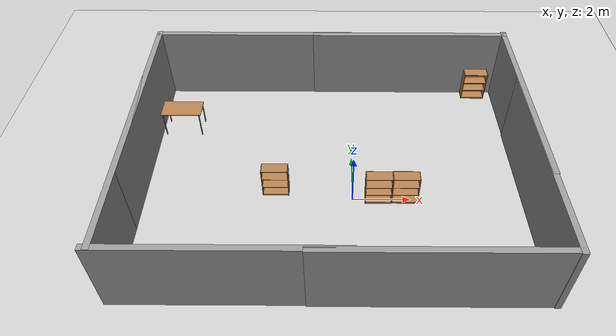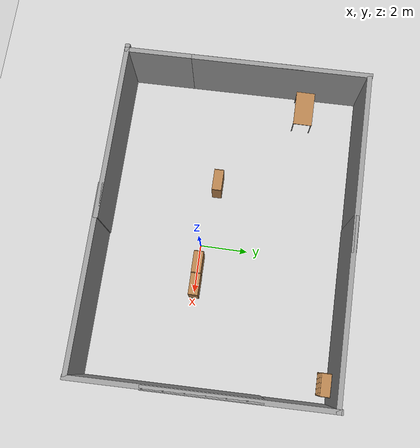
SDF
<sdf version="1.6">
 <world name="default">
  <light name="sun" type="directional">
   <pose>0 0 10 0 -0 0</pose>
   <diffuse>0.8 0.8 0.8 1</diffuse>
   <specular>0.2 0.2 0.2 1</specular>
   <attenuation>
    <range>1000</range>
    <constant>0.9</constant>
    <linear>0.01</linear>
    <quadratic>0.001</quadratic>
   </attenuation>
   <direction>-0.5 0.1 -0.9</direction>
  </light>
  <model name="ground_plane">
   <static>1</static>
   <link name="link">
    <collision name="collision">
     <geometry><plane><normal>0 0 1</normal><size>100 100</size></plane></geometry>
     <surface><friction><ode><mu>100</mu><mu2>50</mu2></ode></friction></surface>
    </collision>
    <visual name="visual">
     <cast_shadows>0</cast_shadows>
     <geometry><plane><normal>0 0 1</normal><size>100 100</size></plane></geometry>
     <material>
      <script><uri>file://media/materials/scripts/gazebo.material</uri><name>Gazebo/Grey</name></script>
     </material>
    </visual>
   </link>
  </model>
  <gravity>0 0 -9.8</gravity>
  <magnetic_field>6e-06 2.3e-05 -4.2e-05</magnetic_field>
  <atmosphere type="adiabatic"/>
  <physics name="default_physics" default="0" type="ode">
   <max_step_size>0.001</max_step_size>
   <real_time_factor>1</real_time_factor>
   <real_time_update_rate>1000</real_time_update_rate>
  </physics>
  <scene><ambient>0.4 0.4 0.4 1</ambient><background>0.7 0.7 0.7 1</background><shadows>1</shadows></scene>
  <spherical_coordinates>
   <surface_model>EARTH_WGS84</surface_model>
   <latitude_deg>0</latitude_deg>
   <longitude_deg>0</longitude_deg>
   <elevation>0</elevation>
   <heading_deg>0</heading_deg>
  </spherical_coordinates>
  <model name="grey_wall">
   <static>1</static>
   <link name="link">
    <pose>0 0 1.4 0 -0 0</pose>
    <collision name="collision"><geometry><box><size>7.5 0.2 2.8</size></box></geometry></collision>
    <visual name="visual">
     <cast_shadows>0</cast_shadows>
     <geometry><box><size>7.5 0.2 2.8</size></box></geometry>
     <material>
      <script>
       <uri>model://grey_wall/materials/scripts</uri>
       <uri>model://grey_wall/materials/textures</uri>
       <name>vrc/grey_wall</name>
      </script>
     </material>
    </visual>
   </link>
   <pose>-3.78693 -4.04978 0 0 -0 0</pose>
  </model>
  <model name="grey_wall_clone">
   <static>1</static>
   <link name="link">
    <pose>0 0 1.4 0 -0 0</pose>
    <collision name="collision"><geometry><box><size>7.5 0.2 2.8</size></box></geometry></collision>
    <visual name="visual">
     <cast_shadows>0</cast_shadows>
     <geometry><box><size>7.5 0.2 2.8</size></box></geometry>
     <material>
      <script>
       <uri>model://grey_wall/materials/scripts</uri>
       <uri>model://grey_wall/materials/textures</uri>
       <name>vrc/grey_wall</name>
      </script>
     </material>
    </visual>
   </link>
   <pose>2.27762 -4.08259 0 0 -0 0</pose>
  </model>
  <model name="grey_wall_clone_0">
   <static>1</static>
   <link name="link">
    <pose>0 0 1.4 0 -0 0</pose>
    <collision name="collision"><geometry><box><size>7.5 0.2 2.8</size></box></geometry></collision>
    <visual name="visual">
     <cast_shadows>0</cast_shadows>
     <geometry><box><size>7.5 0.2 2.8</size></box></geometry>
     <material>
      <script>
       <uri>model://grey_wall/materials/scripts</uri>
       <uri>model://grey_wall/materials/textures</uri>
       <name>vrc/grey_wall</name>
      </script>
     </material>
    </visual>
   </link>
   <pose>2.25787 6.01842 0 0 -0 0</pose>
  </model>
  <model name="grey_wall_clone_1">
   <static>1</static>
   <link name="link">
    <pose>0 0 1.4 0 -0 0</pose>
    <collision name="collision"><geometry><box><size>7.5 0.2 2.8</size></box></geometry></collision>
    <visual name="visual">
     <cast_shadows>0</cast_shadows>
     <geometry><box><size>7.5 0.2 2.8</size></box></geometry>
     <material>
      <script>
       <uri>model://grey_wall/materials/scripts</uri>
       <uri>model://grey_wall/materials/textures</uri>
       <name>vrc/grey_wall</name>
      </script>
     </material>
    </visual>
   </link>
   <pose>-3.75396 6.03464 0 0 -0 0</pose>
  </model>
  <model name="grey_wall_clone_0_clone">
   <static>1</static>
   <link name="link">
    <pose>0 0 1.4 0 -0 0</pose>
    <collision name="collision"><geometry><box><size>7.5 0.2 2.8</size></box></geometry></collision>
    <visual name="visual">
     <cast_shadows>0</cast_shadows>
     <geometry><box><size>7.5 0.2 2.8</size></box></geometry>
     <material>
      <script>
       <uri>model://grey_wall/materials/scripts</uri>
       <uri>model://grey_wall/materials/textures</uri>
       <name>vrc/grey_wall</name>
      </script>
     </material>
    </visual>
   </link>
   <pose>5.96482 2.43447 0 0 0 -1.55432</pose>
  </model>
  <model name="grey_wall_clone_0_clone_clone">
   <static>1</static>
   <link name="link">
    <pose>0 0 1.4 0 -0 0</pose>
    <collision name="collision"><geometry><box><size>7.5 0.2 2.8</size></box></geometry></collision>
    <visual name="visual">
     <cast_shadows>0</cast_shadows>
     <geometry><box><size>7.5 0.2 2.8</size></box></geometry>
     <material>
      <script>
       <uri>model://grey_wall/materials/scripts</uri>
       <uri>model://grey_wall/materials/textures</uri>
       <name>vrc/grey_wall</name>
      </script>
     </material>
    </visual>
   </link>
   <pose>5.98424 -0.453659 0 0 0 -1.55432</pose>
  </model>
  <model name="grey_wall_clone_0_clone_clone_0">
   <static>1</static>
   <link name="link">
    <pose>0 0 1.4 0 -0 0</pose>
    <collision name="collision"><geometry><box><size>7.5 0.2 2.8</size></box></geometry></collision>
    <visual name="visual">
     <cast_shadows>0</cast_shadows>
     <geometry><box><size>7.5 0.2 2.8</size></box></geometry>
     <material>
      <script>
       <uri>model://grey_wall/materials/scripts</uri>
       <uri>model://grey_wall/materials/textures</uri>
       <name>vrc/grey_wall</name>
      </script>
     </material>
    </visual>
   </link>
   <pose>-7.38968 2.40909 0 0 0 -1.55432</pose>
  </model>
  <model name="grey_wall_clone_0_clone_clone_1">
   <static>1</static>
   <link name="link">
    <pose>0 0 1.4 0 -0 0</pose>
    <collision name="collision"><geometry><box><size>7.5 0.2 2.8</size></box></geometry></collision>
    <visual name="visual">
     <cast_shadows>0</cast_shadows>
     <geometry><box><size>7.5 0.2 2.8</size></box></geometry>
     <material>
      <script>
       <uri>model://grey_wall/materials/scripts</uri>
       <uri>model://grey_wall/materials/textures</uri>
       <name>vrc/grey_wall</name>
      </script>
     </material>
    </visual>
   </link>
   <pose>-7.34503 -0.386791 0 0 0 -1.55432</pose>
  </model>
  <model name="table">
   <static>1</static>
   <link name="link">
    <collision name="surface">
     <pose>0 0 1 0 -0 0</pose>
     <geometry><box><size>1.5 0.8 0.03</size></box></geometry>
     <surface><friction><ode><mu>0.6</mu><mu2>0.6</mu2></ode></friction></surface>
    </collision>
    <visual name="visual1">
     <pose>0 0 1 0 -0 0</pose>
     <geometry><box><size>1.5 0.8 0.03</size></box></geometry>
     <material>
      <script><uri>file://media/materials/scripts/gazebo.material</uri><name>Gazebo/Wood</name></script>
     </material>
    </visual>
    <collision name="front_left_leg">
     <pose>0.68 0.38 0.5 0 -0 0</pose>
     <geometry><cylinder><radius>0.02</radius><length>1</length></cylinder></geometry>
    </collision>
    <visual name="front_left_leg">
     <pose>0.68 0.38 0.5 0 -0 0</pose>
     <geometry><cylinder><radius>0.02</radius><length>1</length></cylinder></geometry>
     <material>
      <script><uri>file://media/materials/scripts/gazebo.material</uri><name>Gazebo/Grey</name></script>
     </material>
    </visual>
    <collision name="front_right_leg">
     <pose>0.68 -0.38 0.5 0 -0 0</pose>
     <geometry><cylinder><radius>0.02</radius><length>1</length></cylinder></geometry>
    </collision>
    <visual name="front_right_leg">
     <pose>0.68 -0.38 0.5 0 -0 0</pose>
     <geometry><cylinder><radius>0.02</radius><length>1</length></cylinder></geometry>
     <material>
      <script><uri>file://media/materials/scripts/gazebo.material</uri><name>Gazebo/Grey</name></script>
     </material>
    </visual>
    <collision name="back_right_leg">
     <pose>-0.68 -0.38 0.5 0 -0 0</pose>
     <geometry><cylinder><radius>0.02</radius><length>1</length></cylinder></geometry>
    </collision>
    <visual name="back_right_leg">
     <pose>-0.68 -0.38 0.5 0 -0 0</pose>
     <geometry><cylinder><radius>0.02</radius><length>1</length></cylinder></geometry>
     <material>
      <script><uri>file://media/materials/scripts/gazebo.material</uri><name>Gazebo/Grey</name></script>
     </material>
    </visual>
    <collision name="back_left_leg">
     <pose>-0.68 0.38 0.5 0 -0 0</pose>
     <geometry><cylinder><radius>0.02</radius><length>1</length></cylinder></geometry>
    </collision>
    <visual name="back_left_leg">
     <pose>-0.68 0.38 0.5 0 -0 0</pose>
     <geometry><cylinder><radius>0.02</radius><length>1</length></cylinder></geometry>
     <material>
      <script><uri>file://media/materials/scripts/gazebo.material</uri><name>Gazebo/Grey</name></script>
     </material>
    </visual>
   </link>
   <pose>-6.45477 3.65429 0 0 -0 0</pose>
  </model>
  <model name="bookshelf">
   <static>1</static>
   <link name="link">
    <inertial><mass>1</mass></inertial>
    <collision name="back">
     <pose>0 0.005 0.6 0 -0 0</pose>
     <geometry><box><size>0.9 0.01 1.2</size></box></geometry>
    </collision>
    <visual name="visual1">
     <pose>0 0.005 0.6 0 -0 0</pose>
     <geometry><box><size>0.9 0.01 1.2</size></box></geometry>
     <material>
      <script><uri>file://media/materials/scripts/gazebo.material</uri><name>Gazebo/Wood</name></script>
     </material>
    </visual>
    <collision name="left_side">
     <pose>0.45 -0.195 0.6 0 -0 0</pose>
     <geometry><box><size>0.02 0.4 1.2</size></box></geometry>
    </collision>
    <visual name="visual2">
     <pose>0.45 -0.195 0.6 0 -0 0</pose>
     <geometry><box><size>0.02 0.4 1.2</size></box></geometry>
     <material>
      <script><uri>file://media/materials/scripts/gazebo.material</uri><name>Gazebo/Wood</name></script>
     </material>
    </visual>
    <collision name="right_side">
     <pose>-0.45 -0.195 0.6 0 -0 0</pose>
     <geometry><box><size>0.02 0.4 1.2</size></box></geometry>
    </collision>
    <visual name="visual3">
     <pose>-0.45 -0.195 0.6 0 -0 0</pose>
     <geometry><box><size>0.02 0.4 1.2</size></box></geometry>
     <material>
      <script><uri>file://media/materials/scripts/gazebo.material</uri><name>Gazebo/Wood</name></script>
     </material>
    </visual>
    <collision name="bottom">
     <pose>0 -0.195 0.03 0 -0 0</pose>
     <geometry><box><size>0.88 0.4 0.06</size></box></geometry>
    </collision>
    <visual name="visual4">
     <pose>0 -0.195 0.03 0 -0 0</pose>
     <geometry><box><size>0.88 0.4 0.06</size></box></geometry>
     <material>
      <script><uri>file://media/materials/scripts/gazebo.material</uri><name>Gazebo/Wood</name></script>
     </material>
    </visual>
    <collision name="top">
     <pose>0 -0.195 1.19 0 -0 0</pose>
     <geometry><box><size>0.88 0.4 0.02</size></box></geometry>
    </collision>
    <visual name="visual5">
     <pose>0 -0.195 1.19 0 -0 0</pose>
     <geometry><box><size>0.88 0.4 0.02</size></box></geometry>
     <material>
      <script><uri>file://media/materials/scripts/gazebo.material</uri><name>Gazebo/Wood</name></script>
     </material>
    </visual>
    <collision name="low_shelf">
     <pose>0 -0.195 0.43 0 -0 0</pose>
     <geometry><box><size>0.88 0.4 0.02</size></box></geometry>
    </collision>
    <visual name="visual6">
     <pose>0 -0.195 0.43 0 -0 0</pose>
     <geometry><box><size>0.88 0.4 0.02</size></box></geometry>
     <material>
      <script><uri>file://media/materials/scripts/gazebo.material</uri><name>Gazebo/Wood</name></script>
     </material>
    </visual>
    <collision name="high_shelf">
     <pose>0 -0.195 0.8 0 -0 0</pose>
     <geometry><box><size>0.88 0.4 0.02</size></box></geometry>
    </collision>
    <visual name="visual7">
     <pose>0 -0.195 0.8 0 -0 0</pose>
     <geometry><box><size>0.88 0.4 0.02</size></box></geometry>
     <material>
      <script><uri>file://media/materials/scripts/gazebo.material</uri><name>Gazebo/Wood</name></script>
     </material>
    </visual>
   </link>
   <pose>0.881389 0.221276 0 0 -0 0</pose>
  </model>
  <model name="bookshelf_clone">
   <static>1</static>
   <link name="link">
    <inertial><mass>1</mass></inertial>
    <collision name="back">
     <pose>0 0.005 0.6 0 -0 0</pose>
     <geometry><box><size>0.9 0.01 1.2</size></box></geometry>
    </collision>
    <visual name="visual1">
     <pose>0 0.005 0.6 0 -0 0</pose>
     <geometry><box><size>0.9 0.01 1.2</size></box></geometry>
     <material>
      <script><uri>file://media/materials/scripts/gazebo.material</uri><name>Gazebo/Wood</name></script>
     </material>
    </visual>
    <collision name="left_side">
     <pose>0.45 -0.195 0.6 0 -0 0</pose>
     <geometry><box><size>0.02 0.4 1.2</size></box></geometry>
    </collision>
    <visual name="visual2">
     <pose>0.45 -0.195 0.6 0 -0 0</pose>
     <geometry><box><size>0.02 0.4 1.2</size></box></geometry>
     <material>
      <script><uri>file://media/materials/scripts/gazebo.material</uri><name>Gazebo/Wood</name></script>
     </material>
    </visual>
    <collision name="right_side">
     <pose>-0.45 -0.195 0.6 0 -0 0</pose>
     <geometry><box><size>0.02 0.4 1.2</size></box></geometry>
    </collision>
    <visual name="visual3">
     <pose>-0.45 -0.195 0.6 0 -0 0</pose>
     <geometry><box><size>0.02 0.4 1.2</size></box></geometry>
     <material>
      <script><uri>file://media/materials/scripts/gazebo.material</uri><name>Gazebo/Wood</name></script>
     </material>
    </visual>
    <collision name="bottom">
     <pose>0 -0.195 0.03 0 -0 0</pose>
     <geometry><box><size>0.88 0.4 0.06</size></box></geometry>
    </collision>
    <visual name="visual4">
     <pose>0 -0.195 0.03 0 -0 0</pose>
     <geometry><box><size>0.88 0.4 0.06</size></box></geometry>
     <material>
      <script><uri>file://media/materials/scripts/gazebo.material</uri><name>Gazebo/Wood</name></script>
     </material>
    </visual>
    <collision name="top">
     <pose>0 -0.195 1.19 0 -0 0</pose>
     <geometry><box><size>0.88 0.4 0.02</size></box></geometry>
    </collision>
    <visual name="visual5">
     <pose>0 -0.195 1.19 0 -0 0</pose>
     <geometry><box><size>0.88 0.4 0.02</size></box></geometry>
     <material>
      <script><uri>file://media/materials/scripts/gazebo.material</uri><name>Gazebo/Wood</name></script>
     </material>
    </visual>
    <collision name="low_shelf">
     <pose>0 -0.195 0.43 0 -0 0</pose>
     <geometry><box><size>0.88 0.4 0.02</size></box></geometry>
    </collision>
    <visual name="visual6">
     <pose>0 -0.195 0.43 0 -0 0</pose>
     <geometry><box><size>0.88 0.4 0.02</size></box></geometry>
     <material>
      <script><uri>file://media/materials/scripts/gazebo.material</uri><name>Gazebo/Wood</name></script>
     </material>
    </visual>
    <collision name="high_shelf">
     <pose>0 -0.195 0.8 0 -0 0</pose>
     <geometry><box><size>0.88 0.4 0.02</size></box></geometry>
    </collision>
    <visual name="visual7">
     <pose>0 -0.195 0.8 0 -0 0</pose>
     <geometry><box><size>0.88 0.4 0.02</size></box></geometry>
     <material>
      <script><uri>file://media/materials/scripts/gazebo.material</uri><name>Gazebo/Wood</name></script>
     </material>
    </visual>
   </link>
   <pose>1.80068 0.228523 0 0 -0 0</pose>
  </model>
  <model name="bookshelf_clone_0">
   <static>1</static>
   <link name="link">
    <inertial><mass>1</mass></inertial>
    <collision name="back">
     <pose>0 0.005 0.6 0 -0 0</pose>
     <geometry><box><size>0.9 0.01 1.2</size></box></geometry>
    </collision>
    <visual name="visual1">
     <pose>0 0.005 0.6 0 -0 0</pose>
     <geometry><box><size>0.9 0.01 1.2</size></box></geometry>
     <material>
      <script><uri>file://media/materials/scripts/gazebo.material</uri><name>Gazebo/Wood</name></script>
     </material>
    </visual>
    <collision name="left_side">
     <pose>0.45 -0.195 0.6 0 -0 0</pose>
     <geometry><box><size>0.02 0.4 1.2</size></box></geometry>
    </collision>
    <visual name="visual2">
     <pose>0.45 -0.195 0.6 0 -0 0</pose>
     <geometry><box><size>0.02 0.4 1.2</size></box></geometry>
     <material>
      <script><uri>file://media/materials/scripts/gazebo.material</uri><name>Gazebo/Wood</name></script>
     </material>
    </visual>
    <collision name="right_side">
     <pose>-0.45 -0.195 0.6 0 -0 0</pose>
     <geometry><box><size>0.02 0.4 1.2</size></box></geometry>
    </collision>
    <visual name="visual3">
     <pose>-0.45 -0.195 0.6 0 -0 0</pose>
     <geometry><box><size>0.02 0.4 1.2</size></box></geometry>
     <material>
      <script><uri>file://media/materials/scripts/gazebo.material</uri><name>Gazebo/Wood</name></script>
     </material>
    </visual>
    <collision name="bottom">
     <pose>0 -0.195 0.03 0 -0 0</pose>
     <geometry><box><size>0.88 0.4 0.06</size></box></geometry>
    </collision>
    <visual name="visual4">
     <pose>0 -0.195 0.03 0 -0 0</pose>
     <geometry><box><size>0.88 0.4 0.06</size></box></geometry>
     <material>
      <script><uri>file://media/materials/scripts/gazebo.material</uri><name>Gazebo/Wood</name></script>
     </material>
    </visual>
    <collision name="top">
     <pose>0 -0.195 1.19 0 -0 0</pose>
     <geometry><box><size>0.88 0.4 0.02</size></box></geometry>
    </collision>
    <visual name="visual5">
     <pose>0 -0.195 1.19 0 -0 0</pose>
     <geometry><box><size>0.88 0.4 0.02</size></box></geometry>
     <material>
      <script><uri>file://media/materials/scripts/gazebo.material</uri><name>Gazebo/Wood</name></script>
     </material>
    </visual>
    <collision name="low_shelf">
     <pose>0 -0.195 0.43 0 -0 0</pose>
     <geometry><box><size>0.88 0.4 0.02</size></box></geometry>
    </collision>
    <visual name="visual6">
     <pose>0 -0.195 0.43 0 -0 0</pose>
     <geometry><box><size>0.88 0.4 0.02</size></box></geometry>
     <material>
      <script><uri>file://media/materials/scripts/gazebo.material</uri><name>Gazebo/Wood</name></script>
     </material>
    </visual>
    <collision name="high_shelf">
     <pose>0 -0.195 0.8 0 -0 0</pose>
     <geometry><box><size>0.88 0.4 0.02</size></box></geometry>
    </collision>
    <visual name="visual7">
     <pose>0 -0.195 0.8 0 -0 0</pose>
     <geometry><box><size>0.88 0.4 0.02</size></box></geometry>
     <material>
      <script><uri>file://media/materials/scripts/gazebo.material</uri><name>Gazebo/Wood</name></script>
     </material>
    </visual>
   </link>
   <pose>-2.68748 0.572329 0 0 -0 0</pose>
  </model>
  <model name="bookshelf_clone_clone">
   <static>1</static>
   <link name="link">
    <inertial><mass>1</mass></inertial>
    <collision name="back">
     <pose>0 0.005 0.6 0 -0 0</pose>
     <geometry><box><size>0.9 0.01 1.2</size></box></geometry>
    </collision>
    <visual name="visual1">
     <pose>0 0.005 0.6 0 -0 0</pose>
     <geometry><box><size>0.9 0.01 1.2</size></box></geometry>
     <material>
      <script><uri>file://media/materials/scripts/gazebo.material</uri><name>Gazebo/Wood</name></script>
     </material>
    </visual>
    <collision name="left_side">
     <pose>0.45 -0.195 0.6 0 -0 0</pose>
     <geometry><box><size>0.02 0.4 1.2</size></box></geometry>
    </collision>
    <visual name="visual2">
     <pose>0.45 -0.195 0.6 0 -0 0</pose>
     <geometry><box><size>0.02 0.4 1.2</size></box></geometry>
     <material>
      <script><uri>file://media/materials/scripts/gazebo.material</uri><name>Gazebo/Wood</name></script>
     </material>
    </visual>
    <collision name="right_side">
     <pose>-0.45 -0.195 0.6 0 -0 0</pose>
     <geometry><box><size>0.02 0.4 1.2</size></box></geometry>
    </collision>
    <visual name="visual3">
     <pose>-0.45 -0.195 0.6 0 -0 0</pose>
     <geometry><box><size>0.02 0.4 1.2</size></box></geometry>
     <material>
      <script><uri>file://media/materials/scripts/gazebo.material</uri><name>Gazebo/Wood</name></script>
     </material>
    </visual>
    <collision name="bottom">
     <pose>0 -0.195 0.03 0 -0 0</pose>
     <geometry><box><size>0.88 0.4 0.06</size></box></geometry>
    </collision>
    <visual name="visual4">
     <pose>0 -0.195 0.03 0 -0 0</pose>
     <geometry><box><size>0.88 0.4 0.06</size></box></geometry>
     <material>
      <script><uri>file://media/materials/scripts/gazebo.material</uri><name>Gazebo/Wood</name></script>
     </material>
    </visual>
    <collision name="top">
     <pose>0 -0.195 1.19 0 -0 0</pose>
     <geometry><box><size>0.88 0.4 0.02</size></box></geometry>
    </collision>
    <visual name="visual5">
     <pose>0 -0.195 1.19 0 -0 0</pose>
     <geometry><box><size>0.88 0.4 0.02</size></box></geometry>
     <material>
      <script><uri>file://media/materials/scripts/gazebo.material</uri><name>Gazebo/Wood</name></script>
     </material>
    </visual>
    <collision name="low_shelf">
     <pose>0 -0.195 0.43 0 -0 0</pose>
     <geometry><box><size>0.88 0.4 0.02</size></box></geometry>
    </collision>
    <visual name="visual6">
     <pose>0 -0.195 0.43 0 -0 0</pose>
     <geometry><box><size>0.88 0.4 0.02</size></box></geometry>
     <material>
      <script><uri>file://media/materials/scripts/gazebo.material</uri><name>Gazebo/Wood</name></script>
     </material>
    </visual>
    <collision name="high_shelf">
     <pose>0 -0.195 0.8 0 -0 0</pose>
     <geometry><box><size>0.88 0.4 0.02</size></box></geometry>
    </collision>
    <visual name="visual7">
     <pose>0 -0.195 0.8 0 -0 0</pose>
     <geometry><box><size>0.88 0.4 0.02</size></box></geometry>
     <material>
      <script><uri>file://media/materials/scripts/gazebo.material</uri><name>Gazebo/Wood</name></script>
     </material>
    </visual>
   </link>
   <pose>5.04946 5.90627 0 0 -0 0</pose>
  </model>
  <model name="world_small"><static>0</static><pose>12.957 -1.8927 0 0 -0 0</pose></model>
 </world>
</sdf>
